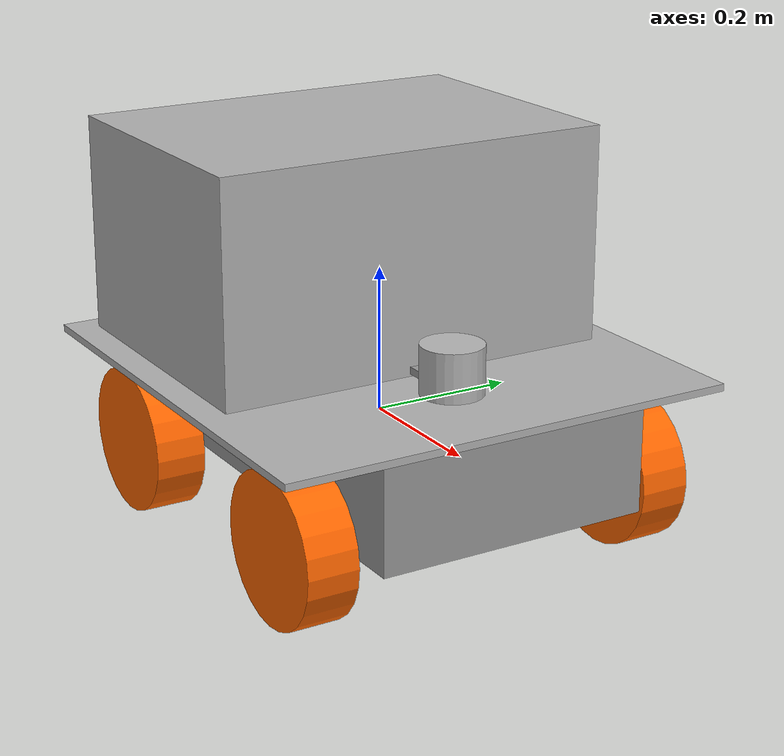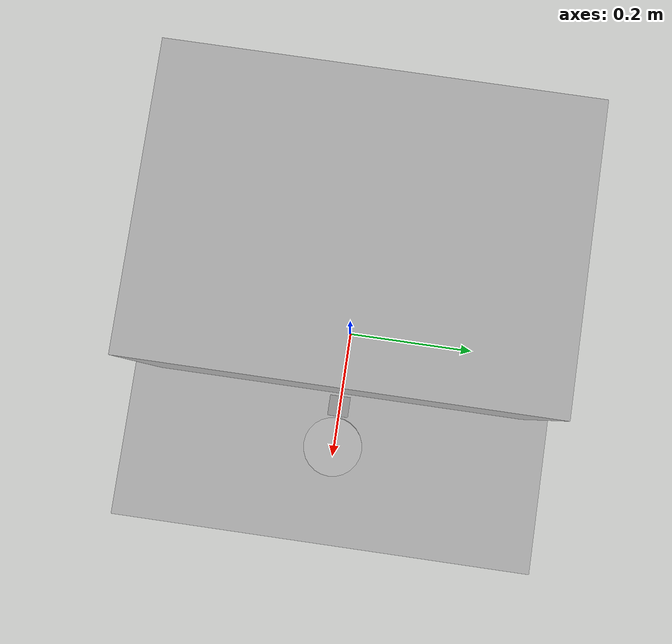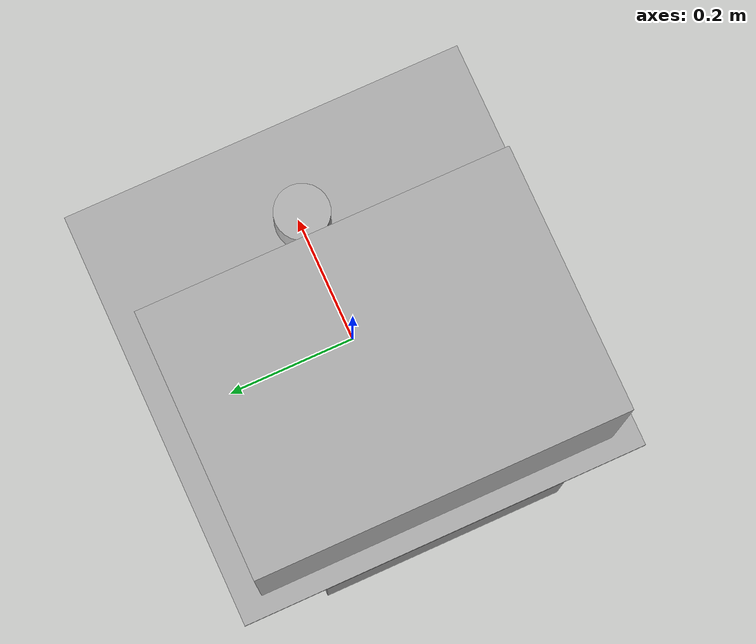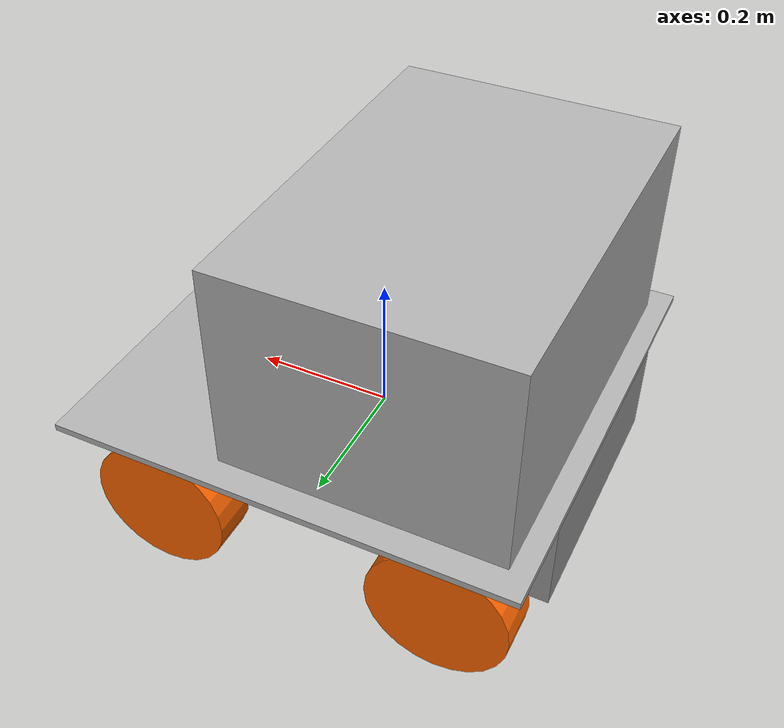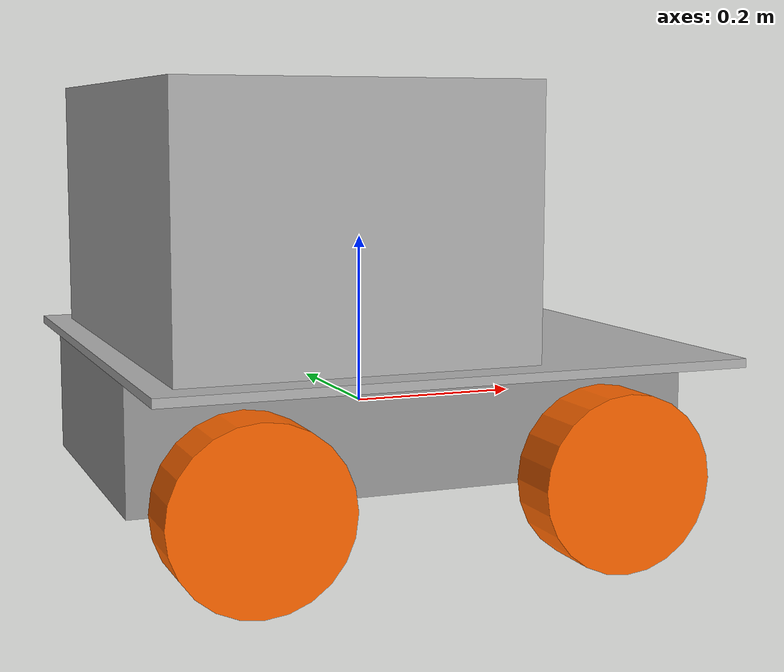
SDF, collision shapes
<?xml version='1.0'?>
<sdf version='1.7'>

  <odom_publish_frequency>1</odom_publish_frequency>
  <topic>cmd_vel</topic>

  <model name='arco'>
    <plugin filename="ignition-gazebo-imu-system"
      name="ignition::gazebo::systems::Imu">
    </plugin>
    <link name='base_link'>
      <inertial>
        <mass>20</mass>
        <inertia>
          <ixx>0.273333</ixx>
          <ixy>0</ixy>
          <ixz>0</ixz>
          <iyy>0.758667</iyy>
          <iyz>0</iyz>
          <izz>0.966667</izz>
        </inertia>
        <pose>0 0 0 0 -0 0</pose>
      </inertial>
      <pose>0 0 0 0 -0 0</pose>
      <visual name='visual'>
        <geometry>
          <box>
            <size>0.66 0.38 0.14</size>
          </box>
        </geometry>
        <material>
          <script>
            <name>Gazebo/Grey</name>
            <uri>file://media/materials/scripts/gazebo.material</uri>
          </script>
          <ambient>1 1 1 1</ambient>
          <diffuse>0.7 0.7 0.7 1</diffuse>
          <specular>0.01 0.01 0.01 1</specular>
          <emissive>0 0 0 1</emissive>
        </material>
      </visual>
      <collision name='collision'>
        <pose>0 0 0 0 -0 0</pose>
        <geometry>
          <box>
            <size>0.66 0.38 0.14</size>
          </box>
        </geometry>
      </collision>

      <collision name='imu_collision'>
        <pose>0.12 0 0.09 0 -0 0</pose>
        <geometry>
          <box>
            <size>0.031 0.031 0.01</size>
          </box>
        </geometry>
      </collision>
      <visual name='imu_visual'>
        <pose>0.12 0 0.09 0 -0 0</pose>
        <geometry>
          <mesh>
            <scale>0.001 0.001 0.001</scale>
            <uri>model://arco/meshes/razor_imu/razor_imu.stl</uri>
          </mesh>
        </geometry>
        <material>
          <ambient>1 0 0  1</ambient>
          <diffuse>1 0 0 1</diffuse>
          <specular>1 0 0  1</specular>
          <emissive>0 0 0 1</emissive>
        </material>
      </visual>
      <sensor name="imu_sensor" type="imu">
        <always_on>1</always_on>
        <update_rate>1</update_rate>
        <visualize>true</visualize>
        <topic>arco/imu</topic>
        <ignition_frame_id>arco/imu</ignition_frame_id>
      </sensor>
    </link>

    <link name='front_right'>
      <inertial>
        <mass>0.5</mass>
        <inertia>
          <ixx>0.00104176</ixx>
          <ixy>0</ixy>
          <ixz>0</ixz>
          <iyy>0.00104176</iyy>
          <iyz>0</iyz>
          <izz>0.001225</izz>
        </inertia>
        <pose>0 0 0 0 -0 0</pose>
      </inertial>
      <pose>0.21 -0.247 -0.06 -1.57 0 0</pose>
      <visual name='visual'>
        <pose>0 0 0 1.57 -0 0</pose>
        <geometry>
          <mesh>
            <scale>0.002 0.002 0.002</scale>
            <uri>model://arco/meshes/mecanum/mecanum_wheel_left.STL</uri>
          </mesh>
        </geometry>
        <material>
          <ambient>1 0 0  1</ambient>
          <diffuse>1 0.4 0 1</diffuse>
          <specular>1 0.4 0  1</specular>
          <emissive>0 0 0 1</emissive>
        </material>
      </visual>
      <collision name='collision'>
        <pose>0 0 0 0 -0 0</pose>
        <geometry>
          <cylinder>
            <radius>0.1015</radius>
            <length>0.07</length>
          </cylinder>
        </geometry>
      </collision>
    </link>

     <link name='rear_right'>
      <inertial>
        <mass>0.5</mass>
        <inertia>
          <ixx>0.00104176</ixx>
          <ixy>0</ixy>
          <ixz>0</ixz>
          <iyy>0.00104176</iyy>
          <iyz>0</iyz>
          <izz>0.001225</izz>
        </inertia>
        <pose>0 0 0 0 -0 0</pose>
      </inertial>
      <pose>-0.21 -0.247 -0.06 -1.57 -0 0</pose>
      <visual name='visual'>
        <pose>0 0 0 1.57 -0 0</pose>
        <geometry>
         <mesh>
            <scale>0.002 0.002 0.002</scale>
            <uri>model://arco/meshes/mecanum/mecanum_wheel_left.STL</uri>
          </mesh>
        </geometry>
        <material>
          <ambient>1 0 0  1</ambient>
          <diffuse>1 0.4 0 1</diffuse>
          <specular>1 0.4 0  1</specular>
          <emissive>0 0 0 1</emissive>
        </material>
      </visual>
      <collision name='collision'>
        <pose>0 0 0 0 -0 0</pose>
        <geometry>
          <cylinder>
            <radius>0.1015</radius>
            <length>0.07</length>
          </cylinder>
        </geometry>
      </collision>
    </link>
     <link name='front_left'>
      <inertial>
        <mass>0.5</mass>
        <inertia>
          <ixx>0.00104176</ixx>
          <ixy>0</ixy>
          <ixz>0</ixz>
          <iyy>0.00104176</iyy>
          <iyz>0</iyz>
          <izz>0.001225</izz>
        </inertia>
        <pose>0 0 0 0 -0 0</pose>
      </inertial>
      <pose>0.21 0.247 -0.06 -1.57 -0 0</pose>
      <visual name='visual'>
        <pose>0 0 0 1.57 -0 0</pose>
        <geometry>
          <mesh>
            <scale>0.002 0.002 0.002</scale>
            <uri>model://arco/meshes/mecanum/mecanum_wheel_left.STL</uri>
          </mesh>
        </geometry>
        <material>
          <ambient>1 0 0  1</ambient>
          <diffuse>1 0.4 0 1</diffuse>
          <specular>1 0.4 0  1</specular>
          <emissive>0 0 0 1</emissive>
        </material>
      </visual>
      <collision name='collision'>
        <pose>0 0 0 0 -0 0</pose>
        <geometry>
          <cylinder>
            <radius>0.1015</radius>
            <length>0.07</length>
          </cylinder>
        </geometry>
      </collision>
    </link>
    <link name='rear_left'>
      <inertial>
        <mass>0.5</mass>
        <inertia>
          <ixx>0.00104176</ixx>
          <ixy>0</ixy>
          <ixz>0</ixz>
          <iyy>0.00104176</iyy>
          <iyz>0</iyz>
          <izz>0.001225</izz>
        </inertia>
        <pose>0 0 0 1.57 -0 0</pose>
      </inertial>
      <pose>-0.21 0.247 -0.06 -1.57 -0 0</pose>
      <visual name='visual'>
        <pose>0 0 0 1.57 -0 0</pose>
        <geometry>
          <mesh>
            <scale>0.002 0.002 0.002</scale>
            <uri>model://arco/meshes/mecanum/mecanum_wheel_left.STL</uri>
          </mesh>
        </geometry>
        <material>
          <ambient>1 0 0  1</ambient>
          <diffuse>1 0.4 0 1</diffuse>
          <specular>1 0.4 0  1</specular>
          <emissive>0 0 0 1</emissive>
        </material>
      </visual>
      <collision name='collision'>
        <pose>0 0 0 0 -0 0</pose>
        <geometry>
          <cylinder>
            <radius>0.1015</radius>
            <length>0.07</length>
          </cylinder>
        </geometry>
      </collision>
    </link>

    <link name='base_cover'>
      <inertial>
        <mass>1</mass>
        <inertia>
          <ixx>0.0341417</ixx>
          <ixy>0</ixy>
          <ixz>0</ixz>
          <iyy>0.0363083</iyy>
          <iyz>0</iyz>
          <izz>0.0704333</izz>
        </inertia>
        <pose>0 0 0 0 -0 0</pose>
      </inertial>
      <pose>-0 0 0.075 0 -0 0</pose>
      <visual name='visual'>
        <geometry>
          <box>
            <size>0.66 0.64 0.01</size>
          </box>
        </geometry>
        <material>
          <ambient>1 1 1 1</ambient>
          <diffuse>0.7 0.7 0.7 1</diffuse>
          <specular>0.01 0.01 0.01 1</specular>
          <emissive>0 0 0 1</emissive>
        </material>
        <pose>0 0 0 0 -0 0</pose>
      </visual>
      <collision name='collision'>
        <pose>0 0 0 0 -0 0</pose>
        <geometry>
          <box>
            <size>0.66 0.64 0.01</size>
          </box>
        </geometry>
      </collision>
    </link>

    <link name='base_platform'>
      <inertial>
        <mass>10</mass>
        <inertia>
          <ixx>0.336333</ixx>
          <ixy>0</ixy>
          <ixz>0</ixz>
          <iyy>0.208333</iyy>
          <iyz>0</iyz>
          <izz>0.394667</izz>
        </inertia>
        <pose>0 0 0 0 -0 0</pose>
      </inertial>
      <pose>-0.1 -0 0.23 0 -0 0</pose>
      <visual name='visual'>
        <geometry>
          <box>
            <size>0.4 0.56 0.3</size>
          </box>
        </geometry>
        <material>
          <ambient>0.5 0.5 0.5 1</ambient>
          <diffuse>0.7 0.7 0.7 1</diffuse>
          <specular>0.01 0.01 0.01 1</specular>
          <emissive>0 0 0 1</emissive>
        </material>
      </visual>
      <collision name='collision'>
        <pose>0 0 0 0 -0 0</pose>
        <geometry>
          <box>
            <size>0.4 0.56 0.3</size>
          </box>
        </geometry>
      </collision>
    </link>

    <link name="os1">
      <pose>0.18 0 0.11 0 0 0</pose>
      <inertial>
        <mass>0.1</mass>
        <inertia>
          <ixx>0.000090623</ixx>
          <iyy>0.000090623</iyy>
          <izz>0.000091036</izz>
          <ixy>0</ixy>
          <ixz>0</ixz>
          <iyz>0</iyz>
        </inertia>
      </inertial>
      <collision name="top_collision">
        <geometry>
          <cylinder>
            <radius>0.04267</radius>
            <length>0.07357</length>
          </cylinder>
        </geometry>
      </collision>
      <visual name="top_visual">
        <pose>0 0 -0.0376785 0 0 1.5707</pose>
        <geometry>
          <mesh>
            <uri>model://sensors/velodyne_hdl32/meshes/velodyne_top.dae</uri>
          </mesh>
        </geometry>
      </visual>
      <sensor name='sensor' type='gpu_lidar'>
          <topic>arco/os1_cloud_node</topic>
          <ignition_frame_id>arco/os1_lidar</ignition_frame_id>
          <pose>0 0 0.029335 0 0 3.1416</pose>
          <update_rate>10</update_rate>
          <ray>
            <noise>
              <type>gaussian</type>
              <mean>0.0</mean>
              <stddev>0.02</stddev>
            </noise>
            <scan>
                <horizontal>
                <samples>512</samples>
                <resolution>1</resolution>
                <min_angle>-3.14159</min_angle>
                <max_angle>3.14159</max_angle>
              </horizontal>
              <vertical>
                <samples>16</samples>
                <resolution>1</resolution>
                <min_angle>-0.2897247</min_angle>
                <max_angle>0.2897247</max_angle>
              </vertical>
            </scan>
            <range>
              <min>0.5</min>
              <max>25.0</max>
              <resolution>0.01</resolution>
            </range>
          </ray>
          <alwaysOn>1</alwaysOn>
          <visualize>true</visualize>
        </sensor>
    </link>

    <joint name="velodyne_joint" type="fixed">
      <child>os1</child>
      <parent>base_cover</parent>
      <pose>0.28 0 1.26 0 -0 0</pose>
    </joint>

     <joint name='JOINT_fixed_1' type='fixed'>
      <parent>base_link</parent>
      <child>base_cover</child>
      <pose>0 0 0 0 -0 0</pose>
    </joint>

    <joint name='JOINT_fixed_2' type='fixed'>
      <parent>base_cover</parent>
      <child>base_platform</child>
      <pose>0 0 0 0 -0 0</pose>
    </joint>

    <joint name='JOINT_wheel_front_right' type='revolute'>
      <parent>base_link</parent>
      <child>front_right</child>
      <pose>0 0 0.035 0 -0 0</pose>
      <axis>
        <xyz>0 0 1</xyz>
        <limit>
          <lower>-1.79769e+308</lower>
          <upper>1.79769e+308</upper>
        </limit>
      </axis>
    </joint>

    <joint name='JOINT_wheel_rear_right' type='revolute'>
      <parent>base_link</parent>
      <child>rear_right</child>
      <pose>0 0 0.035 0 -0 0</pose>
      <axis>
        <xyz>0 0 1</xyz>
        <limit>
          <lower>-1.79769e+308</lower>
          <upper>1.79769e+308</upper>
        </limit>
      </axis>
    </joint>

    <joint name='JOINT_wheel_front_left' type='revolute'>
      <parent>base_link</parent>
      <child>front_left</child>
      <pose>0 0 -0.035 0 -0 0</pose>
      <axis>
        <xyz>0 0 1</xyz>
        <limit>
          <lower>-1.79769e+308</lower>
          <upper>1.79769e+308</upper>
        </limit>
      </axis>
    </joint>

    <joint name='JOINT_wheel_rear_left' type='revolute'>
      <parent>base_link</parent>
      <child>rear_left</child>
      <pose>0 0 -0.035 0 -0 0</pose>
      <axis>
        <xyz>0 0 1</xyz>
        <limit>
          <lower>-1.79769e+308</lower>
          <upper>1.79769e+308</upper>
        </limit>
      </axis>
    </joint>

    <!-- Track drive -->
      <plugin filename="ignition-gazebo-diff-drive-system"
              name="ignition::gazebo::systems::DiffDrive">
        <left_joint>JOINT_wheel_front_left</left_joint>
        <left_joint>JOINT_wheel_rear_left </left_joint>
        <right_joint>JOINT_wheel_front_right</right_joint>
        <right_joint>JOINT_wheel_rear_right</right_joint>
        <wheel_separation>0.42</wheel_separation>
        <wheel_radius>0.1015</wheel_radius>
        <odom_publish_frequency>100</odom_publish_frequency>
        <topic>arco/idmind_motors/set_velocities</topic> #Custom topic that this system will subscribe to in order to receive command velocity messages. This element if optional, and the default value is /model/{name_of_model}/cmd_vel.
        <odom_topic>arco/odometry</odom_topic>  Custom topic on which this system will publish odometry messages. This element if optional, and the default value is /model/{name_of_model}/odometry.
        <tf_topic>arco/tf_odom_to_baselink</tf_topic>
        <frame_id>arco/odom</frame_id>
        <child_frame_id>arco/base_link</child_frame_id>
      </plugin>

  </model>
</sdf>
